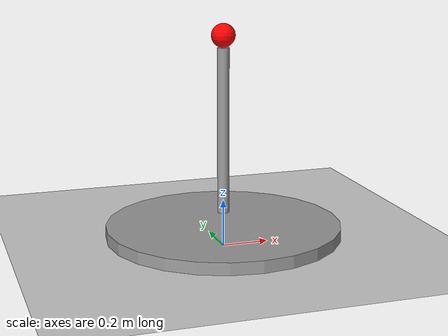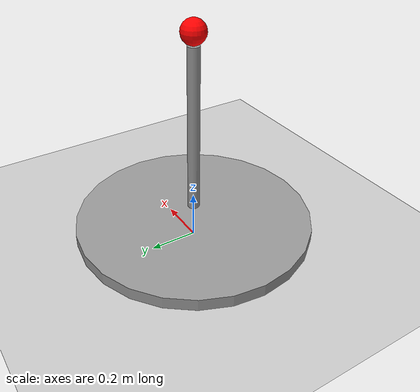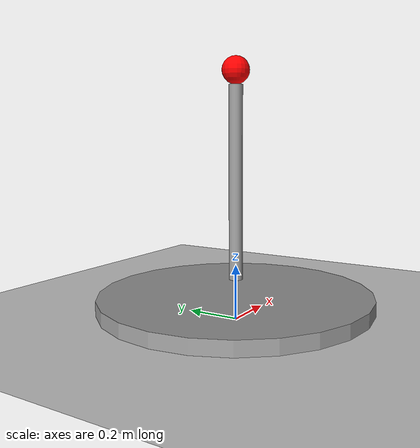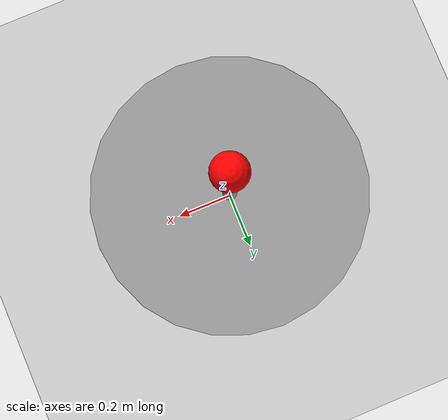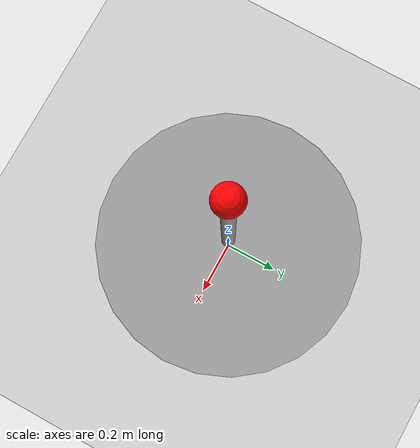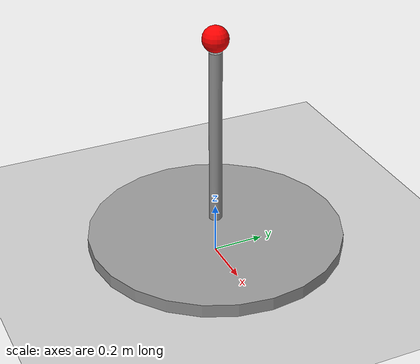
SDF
<?xml version='1.0'?>
<sdf version='1.7'>
  <model name='landing_mark'>
    <pose>0 0 0.05   0 -0 0</pose>
    <include>
      <uri>model://ground_plane</uri>
    </include>

    <link name='landing_mark_link'>
      <enable_wind>0</enable_wind>
      <kinematic>0</kinematic>
      <pose>0 0 0 0 0 0</pose>

      <visual name='base_visual'>
        <pose>0 0 0 0 -0 0</pose>
        <geometry>
          <cylinder>
            <radius>0.5</radius>
            <length>0.1</length>
          </cylinder>
        </geometry>
        <material>
          <script>
            <name>Gazebo/Grey</name>
            <uri>file://media/materials/scripts/gazebo.material</uri>
          </script>
          <shader type='pixel'>
            <normal_map>__default__</normal_map>
          </shader>
          <ambient>1 1 1 1</ambient>
          <diffuse>1 1 1 1</diffuse>
          <specular>1 1 1 1</specular>
          <emissive>0 0 0 1</emissive>
        </material>
        <transparency>0</transparency>
        <cast_shadows>1</cast_shadows>
      </visual>

      <collision name='base_collision'>
        <geometry>
          <cylinder>
            <radius>0.5</radius>
            <length>0.1</length>
          </cylinder>
        </geometry>
        <max_contacts>10</max_contacts>
        <surface>
          <contact>
            <ode />
          </contact>
          <bounce />
          <friction>
            <torsional>
              <ode />
            </torsional>
            <ode />
          </friction>
        </surface>
      </collision>
      <self_collide>0</self_collide>
      <inertial>
        <pose>0 0 0 0 -0 0</pose>
        <inertia>
          <ixx>1</ixx>
          <ixy>0</ixy>
          <ixz>0</ixz>
          <iyy>1</iyy>
          <iyz>0</iyz>
          <izz>1</izz>
        </inertia>
        <mass>1</mass>
      </inertial>

      <visual name='pole_visual'>
        <pose>0 0 0.45 0 0 0</pose>
        <geometry>
          <cylinder>
            <radius>0.025</radius>
            <length>0.7</length>
          </cylinder>
        </geometry>
        <material>
          <script>
            <name>Gazebo/Grey</name>
            <uri>file://media/materials/scripts/gazebo.material</uri>
          </script>
          <shader type='pixel'>
            <normal_map>__default__</normal_map>
          </shader>
          <ambient>0 0 0 1</ambient>
          <diffuse>0 0 0 1</diffuse>
          <specular>0 0 0 1</specular>
          <emissive>0 0 0 1</emissive>
        </material>
        <transparency>0</transparency>
        <cast_shadows>1</cast_shadows>
      </visual>

      <collision name='pole_collision'>
        <geometry>
          <cylinder>
            <radius>0.025</radius>
            <length>0.7</length>
          </cylinder>
        </geometry>
        <max_contacts>10</max_contacts>
        <surface>
          <contact>
            <ode />
          </contact>
          <bounce />
          <friction>
            <torsional>
              <ode />
            </torsional>
            <ode />
          </friction>
        </surface>
      </collision>

      <self_collide>0</self_collide>
      <inertial>
        <pose>0 0 0.45 0 -0 0</pose>
        <inertia>
          <ixx>1</ixx>
          <ixy>0</ixy>
          <ixz>0</ixz>
          <iyy>1</iyy>
          <iyz>0</iyz>
          <izz>1</izz>
        </inertia>
        <mass>1</mass>
      </inertial>

      <visual name='sphere_visual'>
        <pose>0 0 0.85 0 -0 0</pose>
        <geometry>
          <sphere>
            <radius>0.05</radius>
          </sphere>
        </geometry>
        <material>
          <script>
            <name>Gazebo/Grey</name>
            <uri>file://media/materials/scripts/gazebo.material</uri>
          </script>
          <shader type='pixel'>
            <normal_map>__default__</normal_map>
          </shader>
          <ambient>1 0 0 1</ambient>
          <diffuse>1 0 0 1</diffuse>
          <specular>1 0 0 1</specular>
          <emissive>0 0 0 1</emissive>
        </material>
        <transparency>0</transparency>
        <cast_shadows>1</cast_shadows>
      </visual>

      <collision name='sphere_collision'>
        <geometry>
          <sphere>
            <radius>0.05</radius>
          </sphere>
        </geometry>
        <max_contacts>10</max_contacts>
        <surface>
          <contact>
            <ode />
          </contact>
          <bounce />
          <friction>
            <torsional>
              <ode />
            </torsional>
            <ode />
          </friction>
        </surface>
      </collision>
      <self_collide>0</self_collide>
      <inertial>
        <pose>0 0 0.85 0 -0 0</pose>
        <inertia>
          <ixx>1</ixx>
          <ixy>0</ixy>
          <ixz>0</ixz>
          <iyy>1</iyy>
          <iyz>0</iyz>
          <izz>1</izz>
        </inertia>
        <mass>1</mass>
      </inertial>
    </link>
    <static>0</static>
    <allow_auto_disable>1</allow_auto_disable>
  </model>
</sdf>
